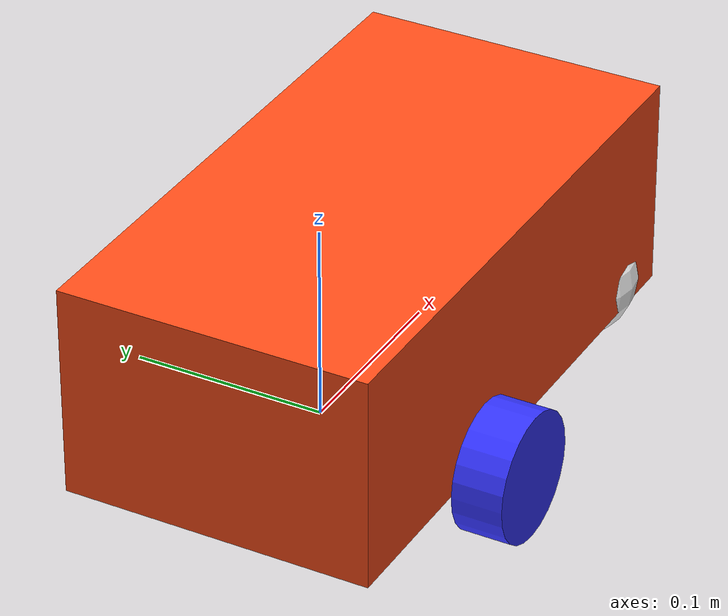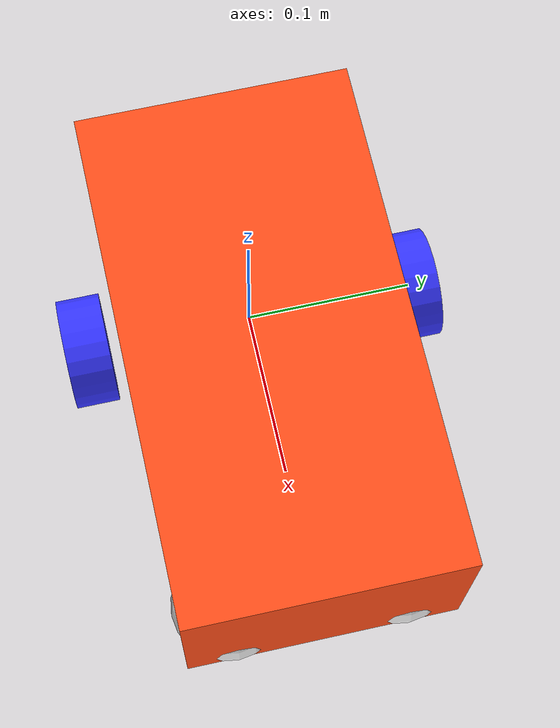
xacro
<?xml version="1.0"?>
<robot xmlns:xacro="http://www.ros.org/wiki/xacro" >

    <xacro:include filename="inertial_macros.xacro"/>

    <xacro:property name="chassis_length" value="0.30"/>
    <xacro:property name="chassis_width" value="0.16"/>
    <xacro:property name="chassis_height" value="0.11"/>
    <xacro:property name="chassis_mass" value="1.0"/>
    <xacro:property name="wheel_radius" value="0.033"/>
    <xacro:property name="wheel_thickness" value="0.026"/>
    <xacro:property name="wheel_mass" value="0.05"/>
    <xacro:property name="wheel_offset_x" value="0.10"/>
    <xacro:property name="wheel_offset_y" value="0.10"/>
    <xacro:property name="wheel_offset_z" value="0.01"/>
    <xacro:property name="caster_wheel_radius_left" value="0.033"/>
    <xacro:property name="caster_wheel_mass_left" value="0.01"/>
    <xacro:property name="caster_wheel_offset_x_left" value="0.27"/>
    <xacro:property name="caster_wheel_offset_y_left" value="0.05"/>
    <xacro:property name="caster_wheel_offset_z_left" value="0.01"/>

    <xacro:property name="caster_wheel_radius_right" value="0.033"/>
    <xacro:property name="caster_wheel_mass_right" value="0.01"/>
    <xacro:property name="caster_wheel_offset_x_right" value="0.27"/>
    <xacro:property name="caster_wheel_offset_y_right" value="-0.05"/>
    <xacro:property name="caster_wheel_offset_z_right" value="0.01"/>

    <material name="white">
        <color rgba="1 1 1 1" />
    </material>

    <material name="orange">
        <color rgba="1 0.3 0.1 1"/>
    </material>

    <material name="blue">
        <color rgba="0.2 0.2 1 1"/>
    </material>

    <material name="black">
        <color rgba="0 0 0 1"/>
    </material>

    <material name="red">
        <color rgba="1 0 0 1"/>
    </material>

    <!-- BASE LINK -->

    <link name="base_link">

    </link>

    <!-- BASE_FOOTPRINT LINK -->

    <joint name="base_footprint_joint" type="fixed">
        <parent link="base_link"/>
        <child link="base_footprint"/>
        <origin xyz="0 0 0" rpy="0 0 0"/>
    </joint>

    <link name="base_footprint">
    </link>

    <!-- CHASSIS LINK -->

    <joint name="chassis_joint" type="fixed">
        <parent link="base_link"/>
        <child link="chassis"/>
        <origin xyz="${-wheel_offset_x} 0 ${-wheel_offset_z}"/>
    </joint>

    <link name="chassis">
        <visual>
            <origin xyz="${chassis_length/2} 0 ${chassis_height/2}"/>
            <geometry>
                <box size="${chassis_length} ${chassis_width} ${chassis_height}"/>
            </geometry>
            <material name="orange"/>
        </visual>
        <collision>
            <origin xyz="${chassis_length/2} 0 ${chassis_height/2}"/>
            <geometry>
                <box size="${chassis_length} ${chassis_width} ${chassis_height}"/>
            </geometry>
        </collision>
        <xacro:inertial_box mass="0.5" x="${chassis_length}" y="${chassis_width}" z="${chassis_height}">
            <origin xyz="${chassis_length/2} 0 ${chassis_height/2}" rpy="0 0 0"/>
        </xacro:inertial_box>
    </link>

    <gazebo reference="chassis">
        <material>Gazebo/Orange</material>
    </gazebo>

    <!-- LEFT WHEEL LINK -->

    <joint name="left_wheel_joint" type="continuous">
        <parent link="base_link"/>
        <child link="left_wheel"/>
        <origin xyz="0 ${wheel_offset_y} 0" rpy="-${pi/2} 0 0" />
        <axis xyz="0 0 1"/>
    </joint>

    <link name="left_wheel">
        <visual>
            <geometry>
                <cylinder radius="${wheel_radius}" length="${wheel_thickness}"/>
            </geometry>
            <material name="blue"/>
        </visual>
        <collision>
            <geometry>
                <sphere radius="${wheel_radius}"/>
            </geometry>
        </collision>
        <xacro:inertial_cylinder mass="${wheel_mass}" length="${wheel_thickness}" radius="${wheel_radius}">
            <origin xyz="0 0 0" rpy="0 0 0"/>
        </xacro:inertial_cylinder>
    </link>

    <gazebo reference="left_wheel">
        <material>Gazebo/Blue</material>
    </gazebo>

    <!-- RIGHT WHEEL LINK -->

    <joint name="right_wheel_joint" type="continuous">
        <parent link="base_link"/>
        <child link="right_wheel"/>
        <origin xyz="0 ${-wheel_offset_y} 0" rpy="${pi/2} 0 0" />
        <axis xyz="0 0 -1"/>
    </joint>

    <link name="right_wheel">
        <visual>
            <geometry>
                <cylinder radius="${wheel_radius}" length="${wheel_thickness}"/>
            </geometry>
            <material name="blue"/>
        </visual>
        <collision>
            <geometry>
                <sphere radius="${wheel_radius}"/>
            </geometry>
        </collision>
        <xacro:inertial_cylinder mass="${wheel_mass}" length="${wheel_thickness}" radius="${wheel_radius}">
            <origin xyz="0 0 0" rpy="0 0 0"/>
        </xacro:inertial_cylinder>
    </link>

    <gazebo reference="right_wheel">
        <material>Gazebo/Blue</material>
    </gazebo>

    <!-- CASTER WHEEL LEFT LINK -->

    <joint name="caster_wheel_joint_left" type="fixed">
        <parent link="chassis"/>
        <child link="caster_wheel_left"/>
        <origin xyz="${caster_wheel_offset_x_left} ${caster_wheel_offset_y_left}
        ${caster_wheel_offset_z_left}"/>
    </joint>

    <link name="caster_wheel_left">
        <visual>
            <geometry>
                <sphere radius="${caster_wheel_radius_left}"/>
            </geometry>
            <material name="white"/>
        </visual>
        <collision>
            <geometry>
                <sphere radius="${caster_wheel_radius_left}"/>
            </geometry>
        </collision>
        <xacro:inertial_sphere mass="${caster_wheel_mass_left}" radius="${caster_wheel_radius_left}">
            <origin xyz="0 0 0" rpy="0 0 0"/>
        </xacro:inertial_sphere>
    </link>

    <gazebo reference="caster_wheel_left">
        <material>Gazebo/White</material>
        <mu1 value="0.001"/>
        <mu2 value="0.001"/>
    </gazebo>

<!-- CASTER WHEEL RIGHT LINK -->

    <joint name="caster_wheel_joint_right" type="fixed">
        <parent link="chassis"/>
        <child link="caster_wheel_right"/>
        <origin xyz="${caster_wheel_offset_x_right} ${caster_wheel_offset_y_right}
        ${caster_wheel_offset_z_right}"/>
    </joint>

    <link name="caster_wheel_right">
        <visual>
            <geometry>
                <sphere radius="${caster_wheel_radius_right}"/>
            </geometry>
            <material name="white"/>
        </visual>
        <collision>
            <geometry>
                <sphere radius="${caster_wheel_radius_right}"/>
            </geometry>
        </collision>
        <xacro:inertial_sphere mass="${caster_wheel_mass_right}" radius="${caster_wheel_radius_right}">
            <origin xyz="0 0 0" rpy="0 0 0"/>
        </xacro:inertial_sphere>
    </link>

    <gazebo reference="caster_wheel_right">
        <material>Gazebo/White</material>
        <mu1 value="0.001"/>
        <mu2 value="0.001"/>
    </gazebo>

    <!-- imu -->
    <joint name="imu_joint" type="fixed">
        <parent link="chassis"/>
        <child link="imu_link"/>
        <origin xyz="0.15 0 0.055" rpy="0 0 0"/>
    </joint>

    <link name="imu_link">
        <visual>
            <geometry>
                <box size="0.05 0.05 0.05"/>
            </geometry>
            <material name="red"/>
        </visual>
        <collision>
            <geometry>
                <box size="0.05 0.05 0.05"/>
            </geometry>
        </collision>
    </link>
</robot>
